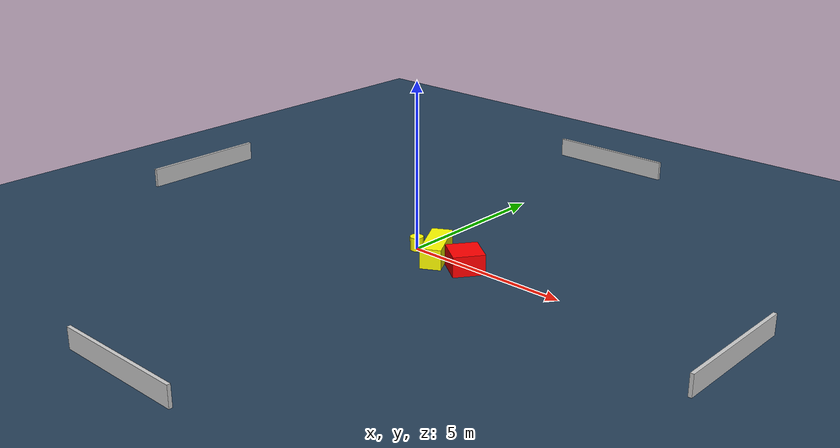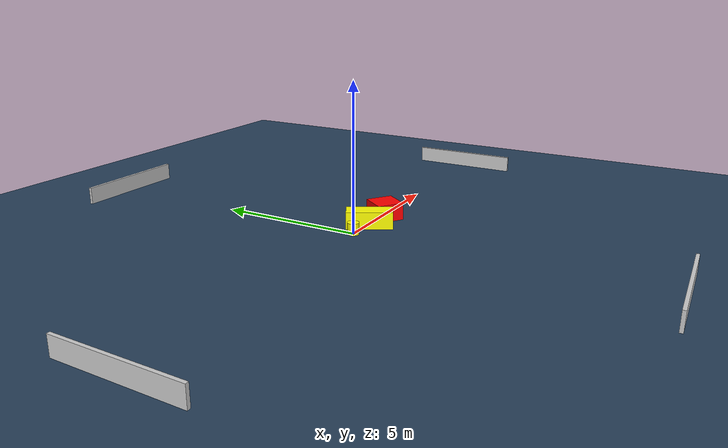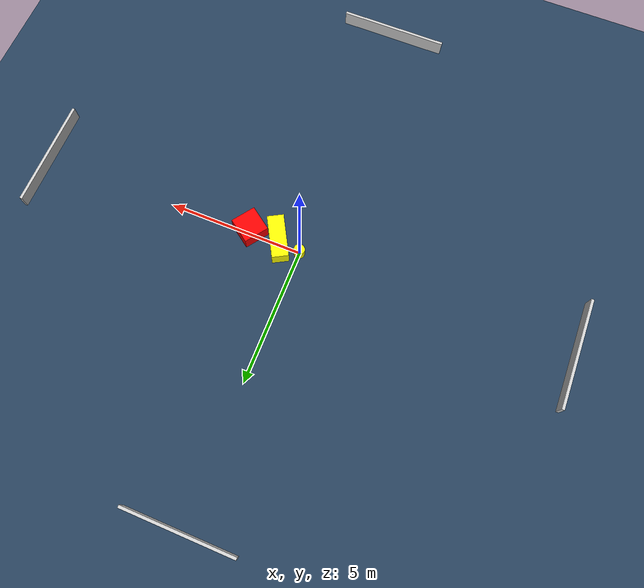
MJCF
<?xml version="1.0" ?>
<mujoco model="generated_environment">
  <option timestep="0.01" integrator="RK4" cone="elliptic"/>
  <default>
    <geom density="1"/>
  </default>
  <asset>
    <texture builtin="gradient" height="3072" name="skybox" rgb1="0.3 0.5 0.7" rgb2="0 0 0" type="skybox" width="512"/>
    <texture builtin="checker" height="300" name="groundplane" rgb1="0.2 0.3 0.4" rgb2="0.1 0.2 0.3" type="2d" width="300"/>
    <material name="groundplane" reflectance="0.2" texrepeat="5 5" texture="groundplane"/>
  </asset>
  <worldbody>
    <light dir="0 0 -1" directional="true" pos="0 0 1.5"/>
    <geom condim="3" friction="0.5 0.005 0.001" material="groundplane" name="floor" pos="0 0 0" size="0 0 0.05" type="plane"/>
    <body name="walls">
      <geom name="wall_1" condim="4" pos="-10.0 0.0 0.3" rgba="0.800000011920929 0.800000011920929 0.800000011920929 1.0" size="0.05 2.0 0.3" type="box"/>
      <geom name="wall_2" condim="4" pos="10.0 0.0 0.3" rgba="0.800000011920929 0.800000011920929 0.800000011920929 1.0" size="0.05 2.0 0.3" type="box"/>
      <geom name="wall_3" condim="4" pos="0.0 -10.0 0.3" rgba="0.800000011920929 0.800000011920929 0.800000011920929 1.0" size="2.0 0.05 0.3" type="box"/>
      <geom name="wall_4" condim="4" pos="0.0 10.0 0.3" rgba="0.800000011920929 0.800000011920929 0.800000011920929 1.0" size="2.0 0.05 0.3" type="box"/>
    </body>
    <body name="robot">
      <joint name="joint_x" type="slide" pos="0 0 0" axis="1 0 0"/>
      <joint name="joint_y" type="slide" pos="0 0 0" axis="0 1 0"/>
      <geom name="robot" type="cylinder" pos="0.0 0.0 0.2" size="0.2 0.2 0.0" mass="5.0" friction="1.0 0.005 0.0001" condim="4" rgba="1.0 1.0 0.0 1.0"/>
    </body>
    <body name="obstacle_1_movable">
      <geom name="obstacle_1_movable" condim="4" pos="0.873958702466364 -0.12854357920380075 0.3" euler="0 0 298.9972876847036" friction="0.0 0.005 0.001" rgba="1.0 1.0 0.0 1.0" size="0.7835691766493267 0.30251020658555045 0.3" type="box" mass="0.1"/>
      <joint type="free"/>
    </body>
    <body name="obstacle_2_static">
      <geom name="obstacle_2_static" condim="4" pos="1.961031339262291 -0.15464454369471228 0.3" euler="0 0 324.33518915763074" friction="0.0 0.005 0.001" rgba="1.0 0.0 0.0 1.0" size="0.4753569298627625 0.4644576503698413 0.3" type="box"/>
    </body>
  </worldbody>
  <actuator>
    <motor name="actuator_x" joint="joint_x" gear="1" ctrlrange="-1 1"/>
    <motor name="actuator_y" joint="joint_y" gear="1" ctrlrange="-1 1"/>
  </actuator>
</mujoco>
